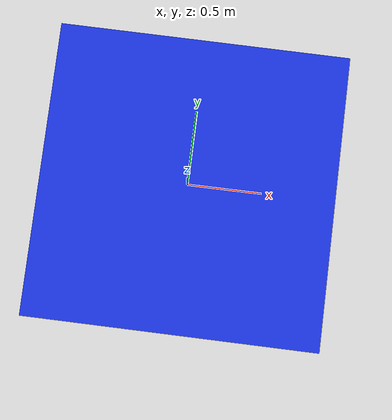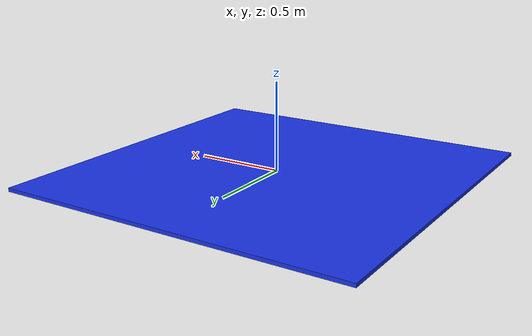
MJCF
<mujoco model="blue_background">
  <compiler angle="radian"/>
  <option timestep="0.001"/>

  <asset>
    <!-- Solid blue material applied to a visible box (instead of an infinite plane). -->
    <material name="blue_ground" rgba="0.1 0.2 0.9 1" emission="1"/>
  </asset>

  <visual>
    <global offwidth="128" offheight="96"/>
  </visual>

  <worldbody>
    <light name="key_light" pos="0 0 2"/>
    <!-- Use a modest box in front of the camera to fill the view with blue. -->
    <geom name="blue_box" type="box" size="1 1 0.01" material="blue_ground" pos="0 0 0"/>
    <camera name="test_cam" pos="0 0 3" zaxis="0 0 1"/>
  </worldbody>
</mujoco>
